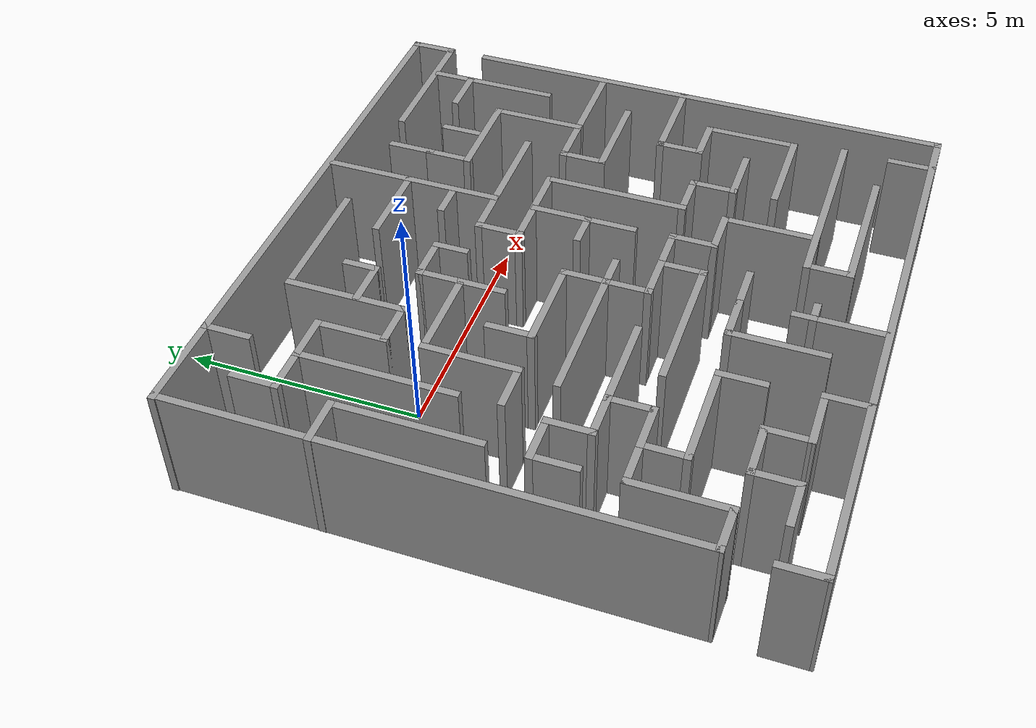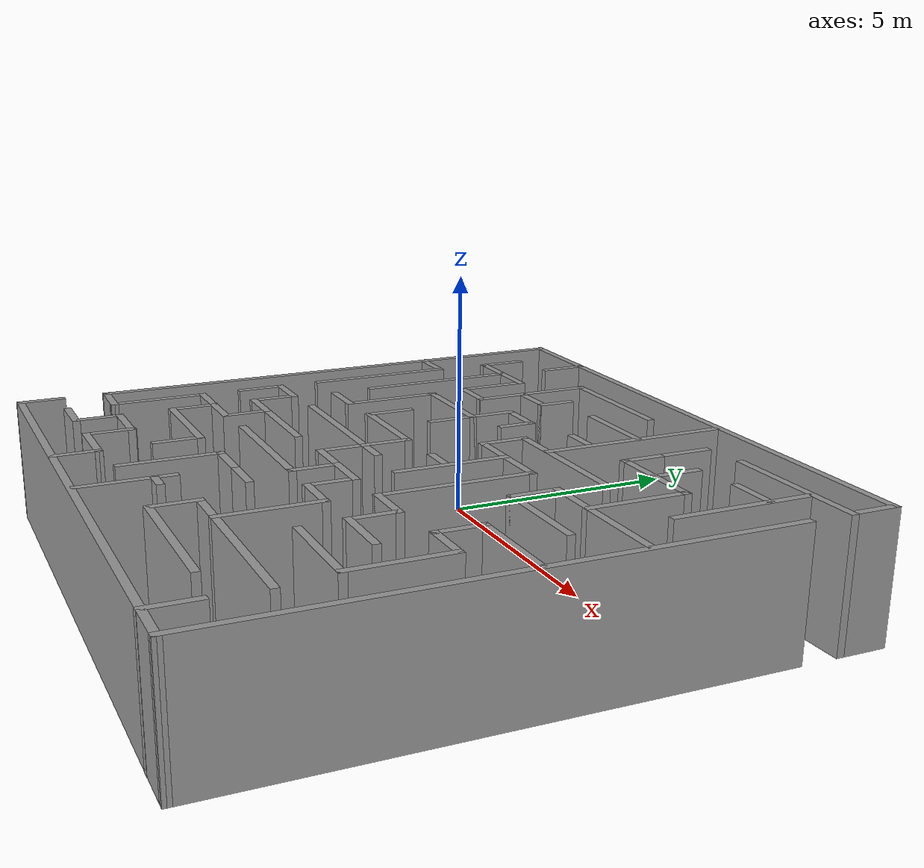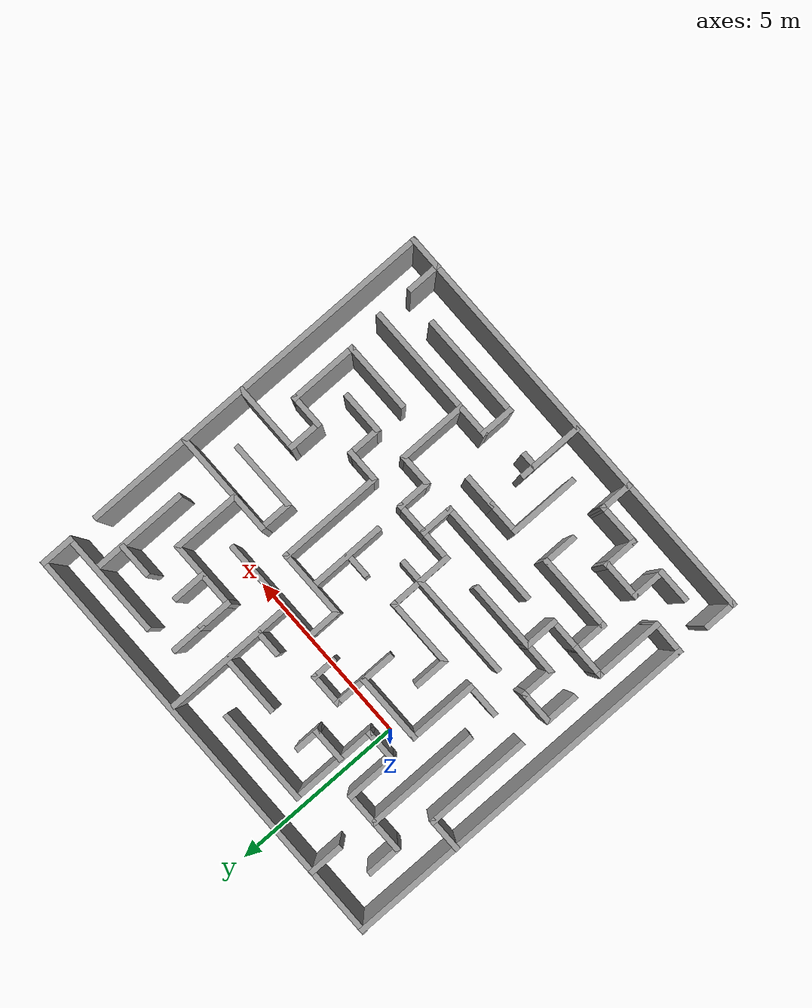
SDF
<sdf version="1.7">
 <model name="maze_2">
  <pose>2.824 -2.42312 0 0 -0 0</pose>
  <link name="Wall_0">
   <collision name="Wall_0_Collision">
    <geometry><box><size>12.0001 0.15 2.5</size></box></geometry>
    <pose>0 0 1.25 0 -0 0</pose>
   </collision>
   <visual name="Wall_0_Visual">
    <pose>0 0 1.25 0 -0 0</pose>
    <geometry><box><size>12.0001 0.15 2.5</size></box></geometry>
    <material>
     <script><uri>file://media/materials/scripts/gazebo.material</uri><name>Gazebo/Grey</name></script>
     <ambient>1 1 1 1</ambient>
    </material>
    <meta><layer>0</layer></meta>
   </visual>
   <pose>-0.00995 6.00703 0 0 -0 -0.00385</pose>
  </link>
  <link name="Wall_101">
   <collision name="Wall_101_Collision">
    <geometry><box><size>2 0.15 2.5</size></box></geometry>
    <pose>0 0 1.25 0 -0 0</pose>
   </collision>
   <visual name="Wall_101_Visual">
    <pose>0 0 1.25 0 -0 0</pose>
    <geometry><box><size>2 0.15 2.5</size></box></geometry>
    <material>
     <script><uri>file://media/materials/scripts/gazebo.material</uri><name>Gazebo/Grey</name></script>
     <ambient>1 1 1 1</ambient>
    </material>
    <meta><layer>0</layer></meta>
   </visual>
   <pose>-3.22514 1.07823 0 0 -0 1.5708</pose>
  </link>
  <link name="Wall_102">
   <collision name="Wall_102_Collision">
    <geometry><box><size>2 0.15 2.5</size></box></geometry>
    <pose>0 0 1.25 0 -0 0</pose>
   </collision>
   <visual name="Wall_102_Visual">
    <pose>0 0 1.25 0 -0 0</pose>
    <geometry><box><size>2 0.15 2.5</size></box></geometry>
    <material>
     <script><uri>file://media/materials/scripts/gazebo.material</uri><name>Gazebo/Grey</name></script>
     <ambient>1 1 1 1</ambient>
    </material>
    <meta><layer>0</layer></meta>
   </visual>
   <pose>-2.30014 2.00323 0 0 -0 0</pose>
  </link>
  <link name="Wall_103">
   <collision name="Wall_103_Collision">
    <geometry><box><size>1 0.15 2.5</size></box></geometry>
    <pose>0 0 1.25 0 -0 0</pose>
   </collision>
   <visual name="Wall_103_Visual">
    <pose>0 0 1.25 0 -0 0</pose>
    <geometry><box><size>1 0.15 2.5</size></box></geometry>
    <material>
     <script><uri>file://media/materials/scripts/gazebo.material</uri><name>Gazebo/Grey</name></script>
     <ambient>1 1 1 1</ambient>
    </material>
    <meta><layer>0</layer></meta>
   </visual>
   <pose>-1.37514 1.57823 0 0 -0 -1.5708</pose>
  </link>
  <link name="Wall_105">
   <collision name="Wall_105_Collision">
    <geometry><box><size>1 0.15 2.5</size></box></geometry>
    <pose>0 0 1.25 0 -0 0</pose>
   </collision>
   <visual name="Wall_105_Visual">
    <pose>0 0 1.25 0 -0 0</pose>
    <geometry><box><size>1 0.15 2.5</size></box></geometry>
    <material>
     <script><uri>file://media/materials/scripts/gazebo.material</uri><name>Gazebo/Grey</name></script>
     <ambient>1 1 1 1</ambient>
    </material>
    <meta><layer>0</layer></meta>
   </visual>
   <pose>-1.37514 2.42823 0 0 -0 1.5708</pose>
  </link>
  <link name="Wall_106">
   <collision name="Wall_106_Collision">
    <geometry><box><size>1 0.15 2.5</size></box></geometry>
    <pose>0 0 1.25 0 -0 0</pose>
   </collision>
   <visual name="Wall_106_Visual">
    <pose>0 0 1.25 0 -0 0</pose>
    <geometry><box><size>1 0.15 2.5</size></box></geometry>
    <material>
     <script><uri>file://media/materials/scripts/gazebo.material</uri><name>Gazebo/Grey</name></script>
     <ambient>1 1 1 1</ambient>
    </material>
    <meta><layer>0</layer></meta>
   </visual>
   <pose>-0.950141 2.85323 0 0 -0 0</pose>
  </link>
  <link name="Wall_109">
   <collision name="Wall_109_Collision">
    <geometry><box><size>1.25 0.15 2.5</size></box></geometry>
    <pose>0 0 1.25 0 -0 0</pose>
   </collision>
   <visual name="Wall_109_Visual">
    <pose>0 0 1.25 0 -0 0</pose>
    <geometry><box><size>1.25 0.15 2.5</size></box></geometry>
    <material>
     <script><uri>file://media/materials/scripts/gazebo.material</uri><name>Gazebo/Grey</name></script>
     <ambient>1 1 1 1</ambient>
    </material>
    <meta><layer>0</layer></meta>
   </visual>
   <pose>3.55854 -2.2765 0 0 -0 3.14159</pose>
  </link>
  <link name="Wall_110">
   <collision name="Wall_110_Collision">
    <geometry><box><size>1 0.15 2.5</size></box></geometry>
    <pose>0 0 1.25 0 -0 0</pose>
   </collision>
   <visual name="Wall_110_Visual">
    <pose>0 0 1.25 0 -0 0</pose>
    <geometry><box><size>1 0.15 2.5</size></box></geometry>
    <material>
     <script><uri>file://media/materials/scripts/gazebo.material</uri><name>Gazebo/Grey</name></script>
     <ambient>1 1 1 1</ambient>
    </material>
    <meta><layer>0</layer></meta>
   </visual>
   <pose>3.00854 -1.8515 0 0 -0 1.5708</pose>
  </link>
  <link name="Wall_111">
   <collision name="Wall_111_Collision">
    <geometry><box><size>1 0.15 2.5</size></box></geometry>
    <pose>0 0 1.25 0 -0 0</pose>
   </collision>
   <visual name="Wall_111_Visual">
    <pose>0 0 1.25 0 -0 0</pose>
    <geometry><box><size>1 0.15 2.5</size></box></geometry>
    <material>
     <script><uri>file://media/materials/scripts/gazebo.material</uri><name>Gazebo/Grey</name></script>
     <ambient>1 1 1 1</ambient>
    </material>
    <meta><layer>0</layer></meta>
   </visual>
   <pose>2.58354 -1.4265 0 0 -0 3.14159</pose>
  </link>
  <link name="Wall_112">
   <collision name="Wall_112_Collision">
    <geometry><box><size>3 0.15 2.5</size></box></geometry>
    <pose>0 0 1.25 0 -0 0</pose>
   </collision>
   <visual name="Wall_112_Visual">
    <pose>0 0 1.25 0 -0 0</pose>
    <geometry><box><size>3 0.15 2.5</size></box></geometry>
    <material>
     <script><uri>file://media/materials/scripts/gazebo.material</uri><name>Gazebo/Grey</name></script>
     <ambient>1 1 1 1</ambient>
    </material>
    <meta><layer>0</layer></meta>
   </visual>
   <pose>2.15854 -0.001499 0 0 -0 1.5708</pose>
  </link>
  <link name="Wall_113">
   <collision name="Wall_113_Collision">
    <geometry><box><size>2 0.15 2.5</size></box></geometry>
    <pose>0 0 1.25 0 -0 0</pose>
   </collision>
   <visual name="Wall_113_Visual">
    <pose>0 0 1.25 0 -0 0</pose>
    <geometry><box><size>2 0.15 2.5</size></box></geometry>
    <material>
     <script><uri>file://media/materials/scripts/gazebo.material</uri><name>Gazebo/Grey</name></script>
     <ambient>1 1 1 1</ambient>
    </material>
    <meta><layer>0</layer></meta>
   </visual>
   <pose>1.23354 1.4235 0 0 -0 3.14159</pose>
  </link>
  <link name="Wall_114">
   <collision name="Wall_114_Collision">
    <geometry><box><size>1 0.15 2.5</size></box></geometry>
    <pose>0 0 1.25 0 -0 0</pose>
   </collision>
   <visual name="Wall_114_Visual">
    <pose>0 0 1.25 0 -0 0</pose>
    <geometry><box><size>1 0.15 2.5</size></box></geometry>
    <material>
     <script><uri>file://media/materials/scripts/gazebo.material</uri><name>Gazebo/Grey</name></script>
     <ambient>1 1 1 1</ambient>
    </material>
    <meta><layer>0</layer></meta>
   </visual>
   <pose>0.308542 1.8485 0 0 -0 1.5708</pose>
  </link>
  <link name="Wall_115">
   <collision name="Wall_115_Collision">
    <geometry><box><size>3 0.15 2.5</size></box></geometry>
    <pose>0 0 1.25 0 -0 0</pose>
   </collision>
   <visual name="Wall_115_Visual">
    <pose>0 0 1.25 0 -0 0</pose>
    <geometry><box><size>3 0.15 2.5</size></box></geometry>
    <material>
     <script><uri>file://media/materials/scripts/gazebo.material</uri><name>Gazebo/Grey</name></script>
     <ambient>1 1 1 1</ambient>
    </material>
    <meta><layer>0</layer></meta>
   </visual>
   <pose>1.73354 2.2735 0 0 -0 0</pose>
  </link>
  <link name="Wall_117">
   <collision name="Wall_117_Collision">
    <geometry><box><size>2.25 0.15 2.5</size></box></geometry>
    <pose>0 0 1.25 0 -0 0</pose>
   </collision>
   <visual name="Wall_117_Visual">
    <pose>0 0 1.25 0 -0 0</pose>
    <geometry><box><size>2.25 0.15 2.5</size></box></geometry>
    <material>
     <script><uri>file://media/materials/scripts/gazebo.material</uri><name>Gazebo/Grey</name></script>
     <ambient>1 1 1 1</ambient>
    </material>
    <meta><layer>0</layer></meta>
   </visual>
   <pose>1.17196 0.374398 0 0 -0 -1.5708</pose>
  </link>
  <link name="Wall_119">
   <collision name="Wall_119_Collision">
    <geometry><box><size>0.75 0.15 2.5</size></box></geometry>
    <pose>0 0 1.25 0 -0 0</pose>
   </collision>
   <visual name="Wall_119_Visual">
    <pose>0 0 1.25 0 -0 0</pose>
    <geometry><box><size>0.75 0.15 2.5</size></box></geometry>
    <material>
     <script><uri>file://media/materials/scripts/gazebo.material</uri><name>Gazebo/Grey</name></script>
     <ambient>1 1 1 1</ambient>
    </material>
    <meta><layer>0</layer></meta>
   </visual>
   <pose>0.851848 0.277924 0 0 -0 3.14159</pose>
  </link>
  <link name="Wall_12">
   <collision name="Wall_12_Collision">
    <geometry><box><size>0.969582 0.15 2.5</size></box></geometry>
    <pose>0 0 1.25 0 -0 0</pose>
   </collision>
   <visual name="Wall_12_Visual">
    <pose>0 0 1.25 0 -0 0</pose>
    <geometry><box><size>0.969582 0.15 2.5</size></box></geometry>
    <material>
     <script><uri>file://media/materials/scripts/gazebo.material</uri><name>Gazebo/Grey</name></script>
     <ambient>1 1 1 1</ambient>
    </material>
    <meta><layer>0</layer></meta>
   </visual>
   <pose>-2.07514 -5.58698 0 0 -0 1.5708</pose>
  </link>
  <link name="Wall_122">
   <collision name="Wall_122_Collision">
    <geometry><box><size>0.75 0.15 2.5</size></box></geometry>
    <pose>0 0 1.25 0 -0 0</pose>
   </collision>
   <visual name="Wall_122_Visual">
    <pose>0 0 1.25 0 -0 0</pose>
    <geometry><box><size>0.75 0.15 2.5</size></box></geometry>
    <material>
     <script><uri>file://media/materials/scripts/gazebo.material</uri><name>Gazebo/Grey</name></script>
     <ambient>1 1 1 1</ambient>
    </material>
    <meta><layer>0</layer></meta>
   </visual>
   <pose>-0.175141 -0.627186 0 0 -0 0</pose>
  </link>
  <link name="Wall_124">
   <collision name="Wall_124_Collision">
    <geometry><box><size>0.75 0.15 2.5</size></box></geometry>
    <pose>0 0 1.25 0 -0 0</pose>
   </collision>
   <visual name="Wall_124_Visual">
    <pose>0 0 1.25 0 -0 0</pose>
    <geometry><box><size>0.75 0.15 2.5</size></box></geometry>
    <material>
     <script><uri>file://media/materials/scripts/gazebo.material</uri><name>Gazebo/Grey</name></script>
     <ambient>1 1 1 1</ambient>
    </material>
    <meta><layer>0</layer></meta>
   </visual>
   <pose>-0.525141 2.55323 0 0 -0 -1.5708</pose>
  </link>
  <link name="Wall_126">
   <collision name="Wall_126_Collision">
    <geometry><box><size>3.75 0.15 2.5</size></box></geometry>
    <pose>0 0 1.25 0 -0 0</pose>
   </collision>
   <visual name="Wall_126_Visual">
    <pose>0 0 1.25 0 -0 0</pose>
    <geometry><box><size>3.75 0.15 2.5</size></box></geometry>
    <material>
     <script><uri>file://media/materials/scripts/gazebo.material</uri><name>Gazebo/Grey</name></script>
     <ambient>1 1 1 1</ambient>
    </material>
    <meta><layer>0</layer></meta>
   </visual>
   <pose>1.21219 4.08928 0 0 -0 1.5708</pose>
  </link>
  <link name="Wall_13">
   <collision name="Wall_13_Collision">
    <geometry><box><size>1.25857 0.15 2.5</size></box></geometry>
    <pose>0 0 1.25 0 -0 0</pose>
   </collision>
   <visual name="Wall_13_Visual">
    <pose>0 0 1.25 0 -0 0</pose>
    <geometry><box><size>1.25857 0.15 2.5</size></box></geometry>
    <material>
     <script><uri>file://media/materials/scripts/gazebo.material</uri><name>Gazebo/Grey</name></script>
     <ambient>1 1 1 1</ambient>
    </material>
    <meta><layer>0</layer></meta>
   </visual>
   <pose>-2.62941 -5.18044 0 0 -0 -3.13572</pose>
  </link>
  <link name="Wall_130">
   <collision name="Wall_130_Collision">
    <geometry><box><size>3.25 0.15 2.5</size></box></geometry>
    <pose>0 0 1.25 0 -0 0</pose>
   </collision>
   <visual name="Wall_130_Visual">
    <pose>0 0 1.25 0 -0 0</pose>
    <geometry><box><size>3.25 0.15 2.5</size></box></geometry>
    <material>
     <script><uri>file://media/materials/scripts/gazebo.material</uri><name>Gazebo/Grey</name></script>
     <ambient>1 1 1 1</ambient>
    </material>
    <meta><layer>0</layer></meta>
   </visual>
   <pose>-4.14755 2.55409 0 0 -0 1.5708</pose>
  </link>
  <link name="Wall_131">
   <collision name="Wall_131_Collision">
    <geometry><box><size>1 0.15 2.5</size></box></geometry>
    <pose>0 0 1.25 0 -0 0</pose>
   </collision>
   <visual name="Wall_131_Visual">
    <pose>0 0 1.25 0 -0 0</pose>
    <geometry><box><size>1 0.15 2.5</size></box></geometry>
    <material>
     <script><uri>file://media/materials/scripts/gazebo.material</uri><name>Gazebo/Grey</name></script>
     <ambient>1 1 1 1</ambient>
    </material>
    <meta><layer>0</layer></meta>
   </visual>
   <pose>-4.57255 4.10409 0 0 -0 3.14159</pose>
  </link>
  <link name="Wall_132">
   <collision name="Wall_132_Collision">
    <geometry><box><size>1 0.15 2.5</size></box></geometry>
    <pose>0 0 1.25 0 -0 0</pose>
   </collision>
   <visual name="Wall_132_Visual">
    <pose>0 0 1.25 0 -0 0</pose>
    <geometry><box><size>1 0.15 2.5</size></box></geometry>
    <material>
     <script><uri>file://media/materials/scripts/gazebo.material</uri><name>Gazebo/Grey</name></script>
     <ambient>1 1 1 1</ambient>
    </material>
    <meta><layer>0</layer></meta>
   </visual>
   <pose>-4.99755 4.52909 0 0 -0 1.5708</pose>
  </link>
  <link name="Wall_134">
   <collision name="Wall_134_Collision">
    <geometry><box><size>1 0.15 2.5</size></box></geometry>
    <pose>0 0 1.25 0 -0 0</pose>
   </collision>
   <visual name="Wall_134_Visual">
    <pose>0 0 1.25 0 -0 0</pose>
    <geometry><box><size>1 0.15 2.5</size></box></geometry>
    <material>
     <script><uri>file://media/materials/scripts/gazebo.material</uri><name>Gazebo/Grey</name></script>
     <ambient>1 1 1 1</ambient>
    </material>
    <meta><layer>0</layer></meta>
   </visual>
   <pose>-3.72255 4.10409 0 0 -0 0</pose>
  </link>
  <link name="Wall_135">
   <collision name="Wall_135_Collision">
    <geometry><box><size>1.5 0.15 2.5</size></box></geometry>
    <pose>0 0 1.25 0 -0 0</pose>
   </collision>
   <visual name="Wall_135_Visual">
    <pose>0 0 1.25 0 -0 0</pose>
    <geometry><box><size>1.5 0.15 2.5</size></box></geometry>
    <material>
     <script><uri>file://media/materials/scripts/gazebo.material</uri><name>Gazebo/Grey</name></script>
     <ambient>1 1 1 1</ambient>
    </material>
    <meta><layer>0</layer></meta>
   </visual>
   <pose>-3.29755 3.42909 0 0 -0 -1.5708</pose>
  </link>
  <link name="Wall_139">
   <collision name="Wall_139_Collision">
    <geometry><box><size>1 0.15 2.5</size></box></geometry>
    <pose>0 0 1.25 0 -0 0</pose>
   </collision>
   <visual name="Wall_139_Visual">
    <pose>0 0 1.25 0 -0 0</pose>
    <geometry><box><size>1 0.15 2.5</size></box></geometry>
    <material>
     <script><uri>file://media/materials/scripts/gazebo.material</uri><name>Gazebo/Grey</name></script>
     <ambient>1 1 1 1</ambient>
    </material>
    <meta><layer>0</layer></meta>
   </visual>
   <pose>-2.87255 2.75409 0 0 -0 0</pose>
  </link>
  <link name="Wall_14">
   <collision name="Wall_14_Collision">
    <geometry><box><size>1 0.15 2.5</size></box></geometry>
    <pose>0 0 1.25 0 -0 0</pose>
   </collision>
   <visual name="Wall_14_Visual">
    <pose>0 0 1.25 0 -0 0</pose>
    <geometry><box><size>1 0.15 2.5</size></box></geometry>
    <material>
     <script><uri>file://media/materials/scripts/gazebo.material</uri><name>Gazebo/Grey</name></script>
     <ambient>1 1 1 1</ambient>
    </material>
    <meta><layer>0</layer></meta>
   </visual>
   <pose>-3.18369 -4.74349 0 0 -0 1.5708</pose>
  </link>
  <link name="Wall_140">
   <collision name="Wall_140_Collision">
    <geometry><box><size>2.5 0.15 2.5</size></box></geometry>
    <pose>0 0 1.25 0 -0 0</pose>
   </collision>
   <visual name="Wall_140_Visual">
    <pose>0 0 1.25 0 -0 0</pose>
    <geometry><box><size>2.5 0.15 2.5</size></box></geometry>
    <material>
     <script><uri>file://media/materials/scripts/gazebo.material</uri><name>Gazebo/Grey</name></script>
     <ambient>1 1 1 1</ambient>
    </material>
    <meta><layer>0</layer></meta>
   </visual>
   <pose>-2.44755 3.92909 0 0 -0 1.5708</pose>
  </link>
  <link name="Wall_141">
   <collision name="Wall_141_Collision">
    <geometry><box><size>2.75 0.15 2.5</size></box></geometry>
    <pose>0 0 1.25 0 -0 0</pose>
   </collision>
   <visual name="Wall_141_Visual">
    <pose>0 0 1.25 0 -0 0</pose>
    <geometry><box><size>2.75 0.15 2.5</size></box></geometry>
    <material>
     <script><uri>file://media/materials/scripts/gazebo.material</uri><name>Gazebo/Grey</name></script>
     <ambient>1 1 1 1</ambient>
    </material>
    <meta><layer>0</layer></meta>
   </visual>
   <pose>-1.14755 5.10409 0 0 -0 0</pose>
  </link>
  <link name="Wall_144">
   <collision name="Wall_144_Collision">
    <geometry><box><size>1 0.15 2.5</size></box></geometry>
    <pose>0 0 1.25 0 -0 0</pose>
   </collision>
   <visual name="Wall_144_Visual">
    <pose>0 0 1.25 0 -0 0</pose>
    <geometry><box><size>1 0.15 2.5</size></box></geometry>
    <material>
     <script><uri>file://media/materials/scripts/gazebo.material</uri><name>Gazebo/Grey</name></script>
     <ambient>1 1 1 1</ambient>
    </material>
    <meta><layer>0</layer></meta>
   </visual>
   <pose>-1.99278 3.69931 0 0 -0 0</pose>
  </link>
  <link name="Wall_145">
   <collision name="Wall_145_Collision">
    <geometry><box><size>0.75 0.15 2.5</size></box></geometry>
    <pose>0 0 1.25 0 -0 0</pose>
   </collision>
   <visual name="Wall_145_Visual">
    <pose>0 0 1.25 0 -0 0</pose>
    <geometry><box><size>0.75 0.15 2.5</size></box></geometry>
    <material>
     <script><uri>file://media/materials/scripts/gazebo.material</uri><name>Gazebo/Grey</name></script>
     <ambient>1 1 1 1</ambient>
    </material>
    <meta><layer>0</layer></meta>
   </visual>
   <pose>-1.56778 3.99931 0 0 -0 1.5708</pose>
  </link>
  <link name="Wall_149">
   <collision name="Wall_149_Collision">
    <geometry><box><size>1.75 0.15 2.5</size></box></geometry>
    <pose>0 0 1.25 0 -0 0</pose>
   </collision>
   <visual name="Wall_149_Visual">
    <pose>0 0 1.25 0 -0 0</pose>
    <geometry><box><size>1.75 0.15 2.5</size></box></geometry>
    <material>
     <script><uri>file://media/materials/scripts/gazebo.material</uri><name>Gazebo/Grey</name></script>
     <ambient>1 1 1 1</ambient>
    </material>
    <meta><layer>0</layer></meta>
   </visual>
   <pose>0.382545 4.18203 0 0 -0 3.14159</pose>
  </link>
  <link name="Wall_151">
   <collision name="Wall_151_Collision">
    <geometry><box><size>0.75 0.15 2.5</size></box></geometry>
    <pose>0 0 1.25 0 -0 0</pose>
   </collision>
   <visual name="Wall_151_Visual">
    <pose>0 0 1.25 0 -0 0</pose>
    <geometry><box><size>0.75 0.15 2.5</size></box></geometry>
    <material>
     <script><uri>file://media/materials/scripts/gazebo.material</uri><name>Gazebo/Grey</name></script>
     <ambient>1 1 1 1</ambient>
    </material>
    <meta><layer>0</layer></meta>
   </visual>
   <pose>0.842318 3.17636 0 0 -0 3.14159</pose>
  </link>
  <link name="Wall_153">
   <collision name="Wall_153_Collision">
    <geometry><box><size>1 0.15 2.5</size></box></geometry>
    <pose>0 0 1.25 0 -0 0</pose>
   </collision>
   <visual name="Wall_153_Visual">
    <pose>0 0 1.25 0 -0 0</pose>
    <geometry><box><size>1 0.15 2.5</size></box></geometry>
    <material>
     <script><uri>file://media/materials/scripts/gazebo.material</uri><name>Gazebo/Grey</name></script>
     <ambient>1 1 1 1</ambient>
    </material>
    <meta><layer>0</layer></meta>
   </visual>
   <pose>-4.04698 5.58737 0 0 -0 -1.5708</pose>
  </link>
  <link name="Wall_155">
   <collision name="Wall_155_Collision">
    <geometry><box><size>1 0.15 2.5</size></box></geometry>
    <pose>0 0 1.25 0 -0 0</pose>
   </collision>
   <visual name="Wall_155_Visual">
    <pose>0 0 1.25 0 -0 0</pose>
    <geometry><box><size>1 0.15 2.5</size></box></geometry>
    <material>
     <script><uri>file://media/materials/scripts/gazebo.material</uri><name>Gazebo/Grey</name></script>
     <ambient>1 1 1 1</ambient>
    </material>
    <meta><layer>0</layer></meta>
   </visual>
   <pose>5.93516 5.55922 0 0 -0 -1.5708</pose>
  </link>
  <link name="Wall_156">
   <collision name="Wall_156_Collision">
    <geometry><box><size>3 0.15 2.5</size></box></geometry>
    <pose>0 0 1.25 0 -0 0</pose>
   </collision>
   <visual name="Wall_156_Visual">
    <pose>0 0 1.25 0 -0 0</pose>
    <geometry><box><size>3 0.15 2.5</size></box></geometry>
    <material>
     <script><uri>file://media/materials/scripts/gazebo.material</uri><name>Gazebo/Grey</name></script>
     <ambient>1 1 1 1</ambient>
    </material>
    <meta><layer>0</layer></meta>
   </visual>
   <pose>4.51016 5.13422 0 0 -0 3.14159</pose>
  </link>
  <link name="Wall_162">
   <collision name="Wall_162_Collision">
    <geometry><box><size>2.75 0.15 2.5</size></box></geometry>
    <pose>0 0 1.25 0 -0 0</pose>
   </collision>
   <visual name="Wall_162_Visual">
    <pose>0 0 1.25 0 -0 0</pose>
    <geometry><box><size>2.75 0.15 2.5</size></box></geometry>
    <material>
     <script><uri>file://media/materials/scripts/gazebo.material</uri><name>Gazebo/Grey</name></script>
     <ambient>1 1 1 1</ambient>
    </material>
    <meta><layer>0</layer></meta>
   </visual>
   <pose>4.98401 3.75227 0 0 -0 1.5708</pose>
  </link>
  <link name="Wall_165">
   <collision name="Wall_165_Collision">
    <geometry><box><size>1 0.15 2.5</size></box></geometry>
    <pose>0 0 1.25 0 -0 0</pose>
   </collision>
   <visual name="Wall_165_Visual">
    <pose>0 0 1.25 0 -0 0</pose>
    <geometry><box><size>1 0.15 2.5</size></box></geometry>
    <material>
     <script><uri>file://media/materials/scripts/gazebo.material</uri><name>Gazebo/Grey</name></script>
     <ambient>1 1 1 1</ambient>
    </material>
    <meta><layer>0</layer></meta>
   </visual>
   <pose>2.22486 4.54781 0 0 -0 1.5708</pose>
  </link>
  <link name="Wall_167">
   <collision name="Wall_167_Collision">
    <geometry><box><size>1 0.15 2.5</size></box></geometry>
    <pose>0 0 1.25 0 -0 0</pose>
   </collision>
   <visual name="Wall_167_Visual">
    <pose>0 0 1.25 0 -0 0</pose>
    <geometry><box><size>1 0.15 2.5</size></box></geometry>
    <material>
     <script><uri>file://media/materials/scripts/gazebo.material</uri><name>Gazebo/Grey</name></script>
     <ambient>1 1 1 1</ambient>
    </material>
    <meta><layer>0</layer></meta>
   </visual>
   <pose>3.15367 3.70192 0 0 -0 1.5708</pose>
  </link>
  <link name="Wall_169">
   <collision name="Wall_169_Collision">
    <geometry><box><size>1 0.15 2.5</size></box></geometry>
    <pose>0 0 1.25 0 -0 0</pose>
   </collision>
   <visual name="Wall_169_Visual">
    <pose>0 0 1.25 0 -0 0</pose>
    <geometry><box><size>1 0.15 2.5</size></box></geometry>
    <material>
     <script><uri>file://media/materials/scripts/gazebo.material</uri><name>Gazebo/Grey</name></script>
     <ambient>1 1 1 1</ambient>
    </material>
    <meta><layer>0</layer></meta>
   </visual>
   <pose>4.51878 4.2826 0 0 -0 3.14159</pose>
  </link>
  <link name="Wall_173">
   <collision name="Wall_173_Collision">
    <geometry><box><size>10.4614 0.15 2.5</size></box></geometry>
    <pose>0 0 1.25 0 -0 0</pose>
   </collision>
   <visual name="Wall_173_Visual">
    <pose>0 0 1.25 0 -0 0</pose>
    <geometry><box><size>10.4614 0.15 2.5</size></box></geometry>
    <material>
     <script><uri>file://media/materials/scripts/gazebo.material</uri><name>Gazebo/Grey</name></script>
     <ambient>1 1 1 1</ambient>
    </material>
    <meta><layer>0</layer></meta>
   </visual>
   <pose>5.93001 -0.871484 0 0 -0 -1.5718</pose>
  </link>
  <link name="Wall_176">
   <collision name="Wall_176_Collision">
    <geometry><box><size>0.5 0.15 2.5</size></box></geometry>
    <pose>0 0 1.25 0 -0 0</pose>
   </collision>
   <visual name="Wall_176_Visual">
    <pose>0 0 1.25 0 -0 0</pose>
    <geometry><box><size>0.5 0.15 2.5</size></box></geometry>
    <material>
     <script><uri>file://media/materials/scripts/gazebo.material</uri><name>Gazebo/Grey</name></script>
     <ambient>1 1 1 1</ambient>
    </material>
    <meta><layer>0</layer></meta>
   </visual>
   <pose>-0.190734 -4.41486 0 0 -0 1.5708</pose>
  </link>
  <link name="Wall_178">
   <collision name="Wall_178_Collision">
    <geometry><box><size>1.5 0.15 2.5</size></box></geometry>
    <pose>0 0 1.25 0 -0 0</pose>
   </collision>
   <visual name="Wall_178_Visual">
    <pose>0 0 1.25 0 -0 0</pose>
    <geometry><box><size>1.5 0.15 2.5</size></box></geometry>
    <material>
     <script><uri>file://media/materials/scripts/gazebo.material</uri><name>Gazebo/Grey</name></script>
     <ambient>1 1 1 1</ambient>
    </material>
    <meta><layer>0</layer></meta>
   </visual>
   <pose>-0.190734 -5.26486 0 0 -0 -1.5708</pose>
  </link>
  <link name="Wall_180">
   <collision name="Wall_180_Collision">
    <geometry><box><size>1 0.15 2.5</size></box></geometry>
    <pose>0 0 1.25 0 -0 0</pose>
   </collision>
   <visual name="Wall_180_Visual">
    <pose>0 0 1.25 0 -0 0</pose>
    <geometry><box><size>1 0.15 2.5</size></box></geometry>
    <material>
     <script><uri>file://media/materials/scripts/gazebo.material</uri><name>Gazebo/Grey</name></script>
     <ambient>1 1 1 1</ambient>
    </material>
    <meta><layer>0</layer></meta>
   </visual>
   <pose>5.06727 -5.60513 0 0 -0 1.5708</pose>
  </link>
  <link name="Wall_182">
   <collision name="Wall_182_Collision">
    <geometry><box><size>1 0.15 2.5</size></box></geometry>
    <pose>0 0 1.25 0 -0 0</pose>
   </collision>
   <visual name="Wall_182_Visual">
    <pose>0 0 1.25 0 -0 0</pose>
    <geometry><box><size>1 0.15 2.5</size></box></geometry>
    <material>
     <script><uri>file://media/materials/scripts/gazebo.material</uri><name>Gazebo/Grey</name></script>
     <ambient>1 1 1 1</ambient>
    </material>
    <meta><layer>0</layer></meta>
   </visual>
   <pose>-3.65014 0.153232 0 0 -0 3.14159</pose>
  </link>
  <link name="Wall_2">
   <collision name="Wall_2_Collision">
    <geometry><box><size>12 0.15 2.5</size></box></geometry>
    <pose>0 0 1.25 0 -0 0</pose>
   </collision>
   <visual name="Wall_2_Visual">
    <pose>0 0 1.25 0 -0 0</pose>
    <geometry><box><size>12 0.15 2.5</size></box></geometry>
    <material>
     <script><uri>file://media/materials/scripts/gazebo.material</uri><name>Gazebo/Grey</name></script>
     <ambient>1 1 1 1</ambient>
    </material>
    <meta><layer>0</layer></meta>
   </visual>
   <pose>-0.000141 -6.01198 0 0 -0 3.13903</pose>
  </link>
  <link name="Wall_21">
   <collision name="Wall_21_Collision">
    <geometry><box><size>1.1673 0.15 2.5</size></box></geometry>
    <pose>0 0 1.25 0 -0 0</pose>
   </collision>
   <visual name="Wall_21_Visual">
    <pose>0 0 1.25 0 -0 0</pose>
    <geometry><box><size>1.1673 0.15 2.5</size></box></geometry>
    <material>
     <script><uri>file://media/materials/scripts/gazebo.material</uri><name>Gazebo/Grey</name></script>
     <ambient>1 1 1 1</ambient>
    </material>
    <meta><layer>0</layer></meta>
   </visual>
   <pose>-3.69234 -4.3337 0 0 -0 3.14159</pose>
  </link>
  <link name="Wall_22">
   <collision name="Wall_22_Collision">
    <geometry><box><size>1 0.15 2.5</size></box></geometry>
    <pose>0 0 1.25 0 -0 0</pose>
   </collision>
   <visual name="Wall_22_Visual">
    <pose>0 0 1.25 0 -0 0</pose>
    <geometry><box><size>1 0.15 2.5</size></box></geometry>
    <material>
     <script><uri>file://media/materials/scripts/gazebo.material</uri><name>Gazebo/Grey</name></script>
     <ambient>1 1 1 1</ambient>
    </material>
    <meta><layer>0</layer></meta>
   </visual>
   <pose>-4.20099 -4.77391 0 0 -0 -1.5708</pose>
  </link>
  <link name="Wall_25">
   <collision name="Wall_25_Collision">
    <geometry><box><size>1.00022 0.15 2.5</size></box></geometry>
    <pose>0 0 1.25 0 -0 0</pose>
   </collision>
   <visual name="Wall_25_Visual">
    <pose>0 0 1.25 0 -0 0</pose>
    <geometry><box><size>1.00022 0.15 2.5</size></box></geometry>
    <material>
     <script><uri>file://media/materials/scripts/gazebo.material</uri><name>Gazebo/Grey</name></script>
     <ambient>1 1 1 1</ambient>
    </material>
    <meta><layer>0</layer></meta>
   </visual>
   <pose>-5.50014 -4.25639 0 0 -0 -0.022628</pose>
  </link>
  <link name="Wall_26">
   <collision name="Wall_26_Collision">
    <geometry><box><size>2 0.15 2.5</size></box></geometry>
    <pose>0 0 1.25 0 -0 0</pose>
   </collision>
   <visual name="Wall_26_Visual">
    <pose>0 0 1.25 0 -0 0</pose>
    <geometry><box><size>2 0.15 2.5</size></box></geometry>
    <material>
     <script><uri>file://media/materials/scripts/gazebo.material</uri><name>Gazebo/Grey</name></script>
     <ambient>1 1 1 1</ambient>
    </material>
    <meta><layer>0</layer></meta>
   </visual>
   <pose>-5.07514 -3.34101 0 0 -0 1.5708</pose>
  </link>
  <link name="Wall_27">
   <collision name="Wall_27_Collision">
    <geometry><box><size>1 0.15 2.5</size></box></geometry>
    <pose>0 0 1.25 0 -0 0</pose>
   </collision>
   <visual name="Wall_27_Visual">
    <pose>0 0 1.25 0 -0 0</pose>
    <geometry><box><size>1 0.15 2.5</size></box></geometry>
    <material>
     <script><uri>file://media/materials/scripts/gazebo.material</uri><name>Gazebo/Grey</name></script>
     <ambient>1 1 1 1</ambient>
    </material>
    <meta><layer>0</layer></meta>
   </visual>
   <pose>-4.65014 -2.41601 0 0 -0 0</pose>
  </link>
  <link name="Wall_28">
   <collision name="Wall_28_Collision">
    <geometry><box><size>1 0.15 2.5</size></box></geometry>
    <pose>0 0 1.25 0 -0 0</pose>
   </collision>
   <visual name="Wall_28_Visual">
    <pose>0 0 1.25 0 -0 0</pose>
    <geometry><box><size>1 0.15 2.5</size></box></geometry>
    <material>
     <script><uri>file://media/materials/scripts/gazebo.material</uri><name>Gazebo/Grey</name></script>
     <ambient>1 1 1 1</ambient>
    </material>
    <meta><layer>0</layer></meta>
   </visual>
   <pose>-4.22514 -2.84101 0 0 -0 -1.5708</pose>
  </link>
  <link name="Wall_29">
   <collision name="Wall_29_Collision">
    <geometry><box><size>2.23143 0.15 2.5</size></box></geometry>
    <pose>0 0 1.25 0 -0 0</pose>
   </collision>
   <visual name="Wall_29_Visual">
    <pose>0 0 1.25 0 -0 0</pose>
    <geometry><box><size>2.23143 0.15 2.5</size></box></geometry>
    <material>
     <script><uri>file://media/materials/scripts/gazebo.material</uri><name>Gazebo/Grey</name></script>
     <ambient>1 1 1 1</ambient>
    </material>
    <meta><layer>0</layer></meta>
   </visual>
   <pose>-3.18449 -3.266 0 0 -0 0</pose>
  </link>
  <link name="Wall_30">
   <collision name="Wall_30_Collision">
    <geometry><box><size>1 0.15 2.5</size></box></geometry>
    <pose>0 0 1.25 0 -0 0</pose>
   </collision>
   <visual name="Wall_30_Visual">
    <pose>0 0 1.25 0 -0 0</pose>
    <geometry><box><size>1 0.15 2.5</size></box></geometry>
    <material>
     <script><uri>file://media/materials/scripts/gazebo.material</uri><name>Gazebo/Grey</name></script>
     <ambient>1 1 1 1</ambient>
    </material>
    <meta><layer>0</layer></meta>
   </visual>
   <pose>-2.14384 -3.69101 0 0 -0 -1.5708</pose>
  </link>
  <link name="Wall_33">
   <collision name="Wall_33_Collision">
    <geometry><box><size>1 0.15 2.5</size></box></geometry>
    <pose>0 0 1.25 0 -0 0</pose>
   </collision>
   <visual name="Wall_33_Visual">
    <pose>0 0 1.25 0 -0 0</pose>
    <geometry><box><size>1 0.15 2.5</size></box></geometry>
    <material>
     <script><uri>file://media/materials/scripts/gazebo.material</uri><name>Gazebo/Grey</name></script>
     <ambient>1 1 1 1</ambient>
    </material>
    <meta><layer>0</layer></meta>
   </visual>
   <pose>-4.62599 -5.19891 0 0 -0 3.14159</pose>
  </link>
  <link name="Wall_37">
   <collision name="Wall_37_Collision">
    <geometry><box><size>1 0.15 2.5</size></box></geometry>
    <pose>0 0 1.25 0 -0 0</pose>
   </collision>
   <visual name="Wall_37_Visual">
    <pose>0 0 1.25 0 -0 0</pose>
    <geometry><box><size>1 0.15 2.5</size></box></geometry>
    <material>
     <script><uri>file://media/materials/scripts/gazebo.material</uri><name>Gazebo/Grey</name></script>
     <ambient>1 1 1 1</ambient>
    </material>
    <meta><layer>0</layer></meta>
   </visual>
   <pose>-0.650141 -3.17719 0 0 -0 3.14159</pose>
  </link>
  <link name="Wall_38">
   <collision name="Wall_38_Collision">
    <geometry><box><size>2 0.15 2.5</size></box></geometry>
    <pose>0 0 1.25 0 -0 0</pose>
   </collision>
   <visual name="Wall_38_Visual">
    <pose>0 0 1.25 0 -0 0</pose>
    <geometry><box><size>2 0.15 2.5</size></box></geometry>
    <material>
     <script><uri>file://media/materials/scripts/gazebo.material</uri><name>Gazebo/Grey</name></script>
     <ambient>1 1 1 1</ambient>
    </material>
    <meta><layer>0</layer></meta>
   </visual>
   <pose>-1.07514 -4.10219 0 0 -0 -1.5708</pose>
  </link>
  <link name="Wall_40">
   <collision name="Wall_40_Collision">
    <geometry><box><size>1 0.15 2.5</size></box></geometry>
    <pose>0 0 1.25 0 -0 0</pose>
   </collision>
   <visual name="Wall_40_Visual">
    <pose>0 0 1.25 0 -0 0</pose>
    <geometry><box><size>1 0.15 2.5</size></box></geometry>
    <material>
     <script><uri>file://media/materials/scripts/gazebo.material</uri><name>Gazebo/Grey</name></script>
     <ambient>1 1 1 1</ambient>
    </material>
    <meta><layer>0</layer></meta>
   </visual>
   <pose>-3.80014 -2.41601 0 0 -0 0</pose>
  </link>
  <link name="Wall_41">
   <collision name="Wall_41_Collision">
    <geometry><box><size>1 0.15 2.5</size></box></geometry>
    <pose>0 0 1.25 0 -0 0</pose>
   </collision>
   <visual name="Wall_41_Visual">
    <pose>0 0 1.25 0 -0 0</pose>
    <geometry><box><size>1 0.15 2.5</size></box></geometry>
    <material>
     <script><uri>file://media/materials/scripts/gazebo.material</uri><name>Gazebo/Grey</name></script>
     <ambient>1 1 1 1</ambient>
    </material>
    <meta><layer>0</layer></meta>
   </visual>
   <pose>-3.37514 -1.991 0 0 -0 1.5708</pose>
  </link>
  <link name="Wall_42">
   <collision name="Wall_42_Collision">
    <geometry><box><size>2 0.15 2.5</size></box></geometry>
    <pose>0 0 1.25 0 -0 0</pose>
   </collision>
   <visual name="Wall_42_Visual">
    <pose>0 0 1.25 0 -0 0</pose>
    <geometry><box><size>2 0.15 2.5</size></box></geometry>
    <material>
     <script><uri>file://media/materials/scripts/gazebo.material</uri><name>Gazebo/Grey</name></script>
     <ambient>1 1 1 1</ambient>
    </material>
    <meta><layer>0</layer></meta>
   </visual>
   <pose>-2.45014 -1.56601 0 0 -0 0</pose>
  </link>
  <link name="Wall_44">
   <collision name="Wall_44_Collision">
    <geometry><box><size>1 0.15 2.5</size></box></geometry>
    <pose>0 0 1.25 0 -0 0</pose>
   </collision>
   <visual name="Wall_44_Visual">
    <pose>0 0 1.25 0 -0 0</pose>
    <geometry><box><size>1 0.15 2.5</size></box></geometry>
    <material>
     <script><uri>file://media/materials/scripts/gazebo.material</uri><name>Gazebo/Grey</name></script>
     <ambient>1 1 1 1</ambient>
    </material>
    <meta><layer>0</layer></meta>
   </visual>
   <pose>-3.80014 -1.56601 0 0 -0 3.14159</pose>
  </link>
  <link name="Wall_45">
   <collision name="Wall_45_Collision">
    <geometry><box><size>1 0.15 2.5</size></box></geometry>
    <pose>0 0 1.25 0 -0 0</pose>
   </collision>
   <visual name="Wall_45_Visual">
    <pose>0 0 1.25 0 -0 0</pose>
    <geometry><box><size>1 0.15 2.5</size></box></geometry>
    <material>
     <script><uri>file://media/materials/scripts/gazebo.material</uri><name>Gazebo/Grey</name></script>
     <ambient>1 1 1 1</ambient>
    </material>
    <meta><layer>0</layer></meta>
   </visual>
   <pose>-4.22514 -1.14101 0 0 -0 1.5708</pose>
  </link>
  <link name="Wall_46">
   <collision name="Wall_46_Collision">
    <geometry><box><size>1 0.15 2.5</size></box></geometry>
    <pose>0 0 1.25 0 -0 0</pose>
   </collision>
   <visual name="Wall_46_Visual">
    <pose>0 0 1.25 0 -0 0</pose>
    <geometry><box><size>1 0.15 2.5</size></box></geometry>
    <material>
     <script><uri>file://media/materials/scripts/gazebo.material</uri><name>Gazebo/Grey</name></script>
     <ambient>1 1 1 1</ambient>
    </material>
    <meta><layer>0</layer></meta>
   </visual>
   <pose>-4.65014 -0.716005 0 0 -0 3.14159</pose>
  </link>
  <link name="Wall_47">
   <collision name="Wall_47_Collision">
    <geometry><box><size>1 0.15 2.5</size></box></geometry>
    <pose>0 0 1.25 0 -0 0</pose>
   </collision>
   <visual name="Wall_47_Visual">
    <pose>0 0 1.25 0 -0 0</pose>
    <geometry><box><size>1 0.15 2.5</size></box></geometry>
    <material>
     <script><uri>file://media/materials/scripts/gazebo.material</uri><name>Gazebo/Grey</name></script>
     <ambient>1 1 1 1</ambient>
    </material>
    <meta><layer>0</layer></meta>
   </visual>
   <pose>-5.07514 -1.14101 0 0 -0 -1.5708</pose>
  </link>
  <link name="Wall_5">
   <collision name="Wall_5_Collision">
    <geometry><box><size>0.969582 0.15 2.5</size></box></geometry>
    <pose>0 0 1.25 0 -0 0</pose>
   </collision>
   <visual name="Wall_5_Visual">
    <pose>0 0 1.25 0 -0 0</pose>
    <geometry><box><size>0.969582 0.15 2.5</size></box></geometry>
    <material>
     <script><uri>file://media/materials/scripts/gazebo.material</uri><name>Gazebo/Grey</name></script>
     <ambient>1 1 1 1</ambient>
    </material>
    <meta><layer>0</layer></meta>
   </visual>
   <pose>-5.92514 -5.58698 0 0 -0 1.5708</pose>
  </link>
  <link name="Wall_51">
   <collision name="Wall_51_Collision">
    <geometry><box><size>4 0.15 2.5</size></box></geometry>
    <pose>0 0 1.25 0 -0 0</pose>
   </collision>
   <visual name="Wall_51_Visual">
    <pose>0 0 1.25 0 -0 0</pose>
    <geometry><box><size>4 0.15 2.5</size></box></geometry>
    <material>
     <script><uri>file://media/materials/scripts/gazebo.material</uri><name>Gazebo/Grey</name></script>
     <ambient>1 1 1 1</ambient>
    </material>
    <meta><layer>0</layer></meta>
   </visual>
   <pose>3.14986 -4.17719 0 0 -0 3.14159</pose>
  </link>
  <link name="Wall_52">
   <collision name="Wall_52_Collision">
    <geometry><box><size>1 0.15 2.5</size></box></geometry>
    <pose>0 0 1.25 0 -0 0</pose>
   </collision>
   <visual name="Wall_52_Visual">
    <pose>0 0 1.25 0 -0 0</pose>
    <geometry><box><size>1 0.15 2.5</size></box></geometry>
    <material>
     <script><uri>file://media/materials/scripts/gazebo.material</uri><name>Gazebo/Grey</name></script>
     <ambient>1 1 1 1</ambient>
    </material>
    <meta><layer>0</layer></meta>
   </visual>
   <pose>1.22486 -4.60219 0 0 -0 -1.5708</pose>
  </link>
  <link name="Wall_53">
   <collision name="Wall_53_Collision">
    <geometry><box><size>3 0.15 2.5</size></box></geometry>
    <pose>0 0 1.25 0 -0 0</pose>
   </collision>
   <visual name="Wall_53_Visual">
    <pose>0 0 1.25 0 -0 0</pose>
    <geometry><box><size>3 0.15 2.5</size></box></geometry>
    <material>
     <script><uri>file://media/materials/scripts/gazebo.material</uri><name>Gazebo/Grey</name></script>
     <ambient>1 1 1 1</ambient>
    </material>
    <meta><layer>0</layer></meta>
   </visual>
   <pose>2.64986 -5.02719 0 0 -0 0</pose>
  </link>
  <link name="Wall_55">
   <collision name="Wall_55_Collision">
    <geometry><box><size>1 0.15 2.5</size></box></geometry>
    <pose>0 0 1.25 0 -0 0</pose>
   </collision>
   <visual name="Wall_55_Visual">
    <pose>0 0 1.25 0 -0 0</pose>
    <geometry><box><size>1 0.15 2.5</size></box></geometry>
    <material>
     <script><uri>file://media/materials/scripts/gazebo.material</uri><name>Gazebo/Grey</name></script>
     <ambient>1 1 1 1</ambient>
    </material>
    <meta><layer>0</layer></meta>
   </visual>
   <pose>0.199859 -3.17719 0 0 -0 0</pose>
  </link>
  <link name="Wall_57">
   <collision name="Wall_57_Collision">
    <geometry><box><size>0.5 0.15 2.5</size></box></geometry>
    <pose>0 0 1.25 0 -0 0</pose>
   </collision>
   <visual name="Wall_57_Visual">
    <pose>0 0 1.25 0 -0 0</pose>
    <geometry><box><size>0.5 0.15 2.5</size></box></geometry>
    <material>
     <script><uri>file://media/materials/scripts/gazebo.material</uri><name>Gazebo/Grey</name></script>
     <ambient>1 1 1 1</ambient>
    </material>
    <meta><layer>0</layer></meta>
   </visual>
   <pose>-0.015734 -4.58986 0 0 -0 0</pose>
  </link>
  <link name="Wall_60">
   <collision name="Wall_60_Collision">
    <geometry><box><size>2 0.15 2.5</size></box></geometry>
    <pose>0 0 1.25 0 -0 0</pose>
   </collision>
   <visual name="Wall_60_Visual">
    <pose>0 0 1.25 0 -0 0</pose>
    <geometry><box><size>2 0.15 2.5</size></box></geometry>
    <material>
     <script><uri>file://media/materials/scripts/gazebo.material</uri><name>Gazebo/Grey</name></script>
     <ambient>1 1 1 1</ambient>
    </material>
    <meta><layer>0</layer></meta>
   </visual>
   <pose>2.07486 -3.25219 0 0 -0 1.5708</pose>
  </link>
  <link name="Wall_61">
   <collision name="Wall_61_Collision">
    <geometry><box><size>1 0.15 2.5</size></box></geometry>
    <pose>0 0 1.25 0 -0 0</pose>
   </collision>
   <visual name="Wall_61_Visual">
    <pose>0 0 1.25 0 -0 0</pose>
    <geometry><box><size>1 0.15 2.5</size></box></geometry>
    <material>
     <script><uri>file://media/materials/scripts/gazebo.material</uri><name>Gazebo/Grey</name></script>
     <ambient>1 1 1 1</ambient>
    </material>
    <meta><layer>0</layer></meta>
   </visual>
   <pose>1.64986 -2.32719 0 0 -0 3.14159</pose>
  </link>
  <link name="Wall_62">
   <collision name="Wall_62_Collision">
    <geometry><box><size>1 0.15 2.5</size></box></geometry>
    <pose>0 0 1.25 0 -0 0</pose>
   </collision>
   <visual name="Wall_62_Visual">
    <pose>0 0 1.25 0 -0 0</pose>
    <geometry><box><size>1 0.15 2.5</size></box></geometry>
    <material>
     <script><uri>file://media/materials/scripts/gazebo.material</uri><name>Gazebo/Grey</name></script>
     <ambient>1 1 1 1</ambient>
    </material>
    <meta><layer>0</layer></meta>
   </visual>
   <pose>1.22486 -1.90219 0 0 -0 1.5708</pose>
  </link>
  <link name="Wall_63">
   <collision name="Wall_63_Collision">
    <geometry><box><size>1 0.15 2.5</size></box></geometry>
    <pose>0 0 1.25 0 -0 0</pose>
   </collision>
   <visual name="Wall_63_Visual">
    <pose>0 0 1.25 0 -0 0</pose>
    <geometry><box><size>1 0.15 2.5</size></box></geometry>
    <material>
     <script><uri>file://media/materials/scripts/gazebo.material</uri><name>Gazebo/Grey</name></script>
     <ambient>1 1 1 1</ambient>
    </material>
    <meta><layer>0</layer></meta>
   </visual>
   <pose>0.799859 -1.47719 0 0 -0 3.14159</pose>
  </link>
  <link name="Wall_64">
   <collision name="Wall_64_Collision">
    <geometry><box><size>1 0.15 2.5</size></box></geometry>
    <pose>0 0 1.25 0 -0 0</pose>
   </collision>
   <visual name="Wall_64_Visual">
    <pose>0 0 1.25 0 -0 0</pose>
    <geometry><box><size>1 0.15 2.5</size></box></geometry>
    <material>
     <script><uri>file://media/materials/scripts/gazebo.material</uri><name>Gazebo/Grey</name></script>
     <ambient>1 1 1 1</ambient>
    </material>
    <meta><layer>0</layer></meta>
   </visual>
   <pose>0.374859 -1.90219 0 0 -0 -1.5708</pose>
  </link>
  <link name="Wall_65">
   <collision name="Wall_65_Collision">
    <geometry><box><size>3 0.15 2.5</size></box></geometry>
    <pose>0 0 1.25 0 -0 0</pose>
   </collision>
   <visual name="Wall_65_Visual">
    <pose>0 0 1.25 0 -0 0</pose>
    <geometry><box><size>3 0.15 2.5</size></box></geometry>
    <material>
     <script><uri>file://media/materials/scripts/gazebo.material</uri><name>Gazebo/Grey</name></script>
     <ambient>1 1 1 1</ambient>
    </material>
    <meta><layer>0</layer></meta>
   </visual>
   <pose>-1.05014 -2.32719 0 0 -0 3.14159</pose>
  </link>
  <link name="Wall_67">
   <collision name="Wall_67_Collision">
    <geometry><box><size>1 0.15 2.5</size></box></geometry>
    <pose>0 0 1.25 0 -0 0</pose>
   </collision>
   <visual name="Wall_67_Visual">
    <pose>0 0 1.25 0 -0 0</pose>
    <geometry><box><size>1 0.15 2.5</size></box></geometry>
    <material>
     <script><uri>file://media/materials/scripts/gazebo.material</uri><name>Gazebo/Grey</name></script>
     <ambient>1 1 1 1</ambient>
    </material>
    <meta><layer>0</layer></meta>
   </visual>
   <pose>-0.050141 -1.47719 0 0 -0 3.14159</pose>
  </link>
  <link name="Wall_68">
   <collision name="Wall_68_Collision">
    <geometry><box><size>1 0.15 2.5</size></box></geometry>
    <pose>0 0 1.25 0 -0 0</pose>
   </collision>
   <visual name="Wall_68_Visual">
    <pose>0 0 1.25 0 -0 0</pose>
    <geometry><box><size>1 0.15 2.5</size></box></geometry>
    <material>
     <script><uri>file://media/materials/scripts/gazebo.material</uri><name>Gazebo/Grey</name></script>
     <ambient>1 1 1 1</ambient>
    </material>
    <meta><layer>0</layer></meta>
   </visual>
   <pose>-0.475141 -1.05219 0 0 -0 1.5708</pose>
  </link>
  <link name="Wall_69">
   <collision name="Wall_69_Collision">
    <geometry><box><size>3 0.15 2.5</size></box></geometry>
    <pose>0 0 1.25 0 -0 0</pose>
   </collision>
   <visual name="Wall_69_Visual">
    <pose>0 0 1.25 0 -0 0</pose>
    <geometry><box><size>3 0.15 2.5</size></box></geometry>
    <material>
     <script><uri>file://media/materials/scripts/gazebo.material</uri><name>Gazebo/Grey</name></script>
     <ambient>1 1 1 1</ambient>
    </material>
    <meta><layer>0</layer></meta>
   </visual>
   <pose>-1.90014 -0.627186 0 0 -0 3.14159</pose>
  </link>
  <link name="Wall_71">
   <collision name="Wall_71_Collision">
    <geometry><box><size>1 0.15 2.5</size></box></geometry>
    <pose>0 0 1.25 0 -0 0</pose>
   </collision>
   <visual name="Wall_71_Visual">
    <pose>0 0 1.25 0 -0 0</pose>
    <geometry><box><size>1 0.15 2.5</size></box></geometry>
    <material>
     <script><uri>file://media/materials/scripts/gazebo.material</uri><name>Gazebo/Grey</name></script>
     <ambient>1 1 1 1</ambient>
    </material>
    <meta><layer>0</layer></meta>
   </visual>
   <pose>-0.475141 -0.202186 0 0 -0 1.5708</pose>
  </link>
  <link name="Wall_72">
   <collision name="Wall_72_Collision">
    <geometry><box><size>2 0.15 2.5</size></box></geometry>
    <pose>0 0 1.25 0 -0 0</pose>
   </collision>
   <visual name="Wall_72_Visual">
    <pose>0 0 1.25 0 -0 0</pose>
    <geometry><box><size>2 0.15 2.5</size></box></geometry>
    <material>
     <script><uri>file://media/materials/scripts/gazebo.material</uri><name>Gazebo/Grey</name></script>
     <ambient>1 1 1 1</ambient>
    </material>
    <meta><layer>0</layer></meta>
   </visual>
   <pose>-1.40014 0.222814 0 0 -0 3.14159</pose>
  </link>
  <link name="Wall_76">
   <collision name="Wall_76_Collision">
    <geometry><box><size>2 0.15 2.5</size></box></geometry>
    <pose>0 0 1.25 0 -0 0</pose>
   </collision>
   <visual name="Wall_76_Visual">
    <pose>0 0 1.25 0 -0 0</pose>
    <geometry><box><size>2 0.15 2.5</size></box></geometry>
    <material>
     <script><uri>file://media/materials/scripts/gazebo.material</uri><name>Gazebo/Grey</name></script>
     <ambient>1 1 1 1</ambient>
    </material>
    <meta><layer>0</layer></meta>
   </visual>
   <pose>4.99986 -0.427186 0 0 -0 -3.14159</pose>
  </link>
  <link name="Wall_77">
   <collision name="Wall_77_Collision">
    <geometry><box><size>1 0.15 2.5</size></box></geometry>
    <pose>0 0 1.25 0 -0 0</pose>
   </collision>
   <visual name="Wall_77_Visual">
    <pose>0 0 1.25 0 -0 0</pose>
    <geometry><box><size>1 0.15 2.5</size></box></geometry>
    <material>
     <script><uri>file://media/materials/scripts/gazebo.material</uri><name>Gazebo/Grey</name></script>
     <ambient>1 1 1 1</ambient>
    </material>
    <meta><layer>0</layer></meta>
   </visual>
   <pose>4.07486 -0.852186 0 0 -0 -1.5708</pose>
  </link>
  <link name="Wall_78">
   <collision name="Wall_78_Collision">
    <geometry><box><size>1 0.15 2.5</size></box></geometry>
    <pose>0 0 1.25 0 -0 0</pose>
   </collision>
   <visual name="Wall_78_Visual">
    <pose>0 0 1.25 0 -0 0</pose>
    <geometry><box><size>1 0.15 2.5</size></box></geometry>
    <material>
     <script><uri>file://media/materials/scripts/gazebo.material</uri><name>Gazebo/Grey</name></script>
     <ambient>1 1 1 1</ambient>
    </material>
    <meta><layer>0</layer></meta>
   </visual>
   <pose>4.49986 -1.27719 0 0 -0 0</pose>
  </link>
  <link name="Wall_79">
   <collision name="Wall_79_Collision">
    <geometry><box><size>2 0.15 2.5</size></box></geometry>
    <pose>0 0 1.25 0 -0 0</pose>
   </collision>
   <visual name="Wall_79_Visual">
    <pose>0 0 1.25 0 -0 0</pose>
    <geometry><box><size>2 0.15 2.5</size></box></geometry>
    <material>
     <script><uri>file://media/materials/scripts/gazebo.material</uri><name>Gazebo/Grey</name></script>
     <ambient>1 1 1 1</ambient>
    </material>
    <meta><layer>0</layer></meta>
   </visual>
   <pose>4.92486 -2.20219 0 0 -0 -1.5708</pose>
  </link>
  <link name="Wall_80">
   <collision name="Wall_80_Collision">
    <geometry><box><size>2 0.15 2.5</size></box></geometry>
    <pose>0 0 1.25 0 -0 0</pose>
   </collision>
   <visual name="Wall_80_Visual">
    <pose>0 0 1.25 0 -0 0</pose>
    <geometry><box><size>2 0.15 2.5</size></box></geometry>
    <material>
     <script><uri>file://media/materials/scripts/gazebo.material</uri><name>Gazebo/Grey</name></script>
     <ambient>1 1 1 1</ambient>
    </material>
    <meta><layer>0</layer></meta>
   </visual>
   <pose>3.99986 -3.12719 0 0 -0 3.14159</pose>
  </link>
  <link name="Wall_83">
   <collision name="Wall_83_Collision">
    <geometry><box><size>3 0.15 2.5</size></box></geometry>
    <pose>0 0 1.25 0 -0 0</pose>
   </collision>
   <visual name="Wall_83_Visual">
    <pose>0 0 1.25 0 -0 0</pose>
    <geometry><box><size>3 0.15 2.5</size></box></geometry>
    <material>
     <script><uri>file://media/materials/scripts/gazebo.material</uri><name>Gazebo/Grey</name></script>
     <ambient>1 1 1 1</ambient>
    </material>
    <meta><layer>0</layer></meta>
   </visual>
   <pose>4.49986 1.42281 0 0 -0 3.14159</pose>
  </link>
  <link name="Wall_84">
   <collision name="Wall_84_Collision">
    <geometry><box><size>1 0.15 2.5</size></box></geometry>
    <pose>0 0 1.25 0 -0 0</pose>
   </collision>
   <visual name="Wall_84_Visual">
    <pose>0 0 1.25 0 -0 0</pose>
    <geometry><box><size>1 0.15 2.5</size></box></geometry>
    <material>
     <script><uri>file://media/materials/scripts/gazebo.material</uri><name>Gazebo/Grey</name></script>
     <ambient>1 1 1 1</ambient>
    </material>
    <meta><layer>0</layer></meta>
   </visual>
   <pose>3.07486 0.997814 0 0 -0 -1.5708</pose>
  </link>
  <link name="Wall_85">
   <collision name="Wall_85_Collision">
    <geometry><box><size>2 0.15 2.5</size></box></geometry>
    <pose>0 0 1.25 0 -0 0</pose>
   </collision>
   <visual name="Wall_85_Visual">
    <pose>0 0 1.25 0 -0 0</pose>
    <geometry><box><size>2 0.15 2.5</size></box></geometry>
    <material>
     <script><uri>file://media/materials/scripts/gazebo.material</uri><name>Gazebo/Grey</name></script>
     <ambient>1 1 1 1</ambient>
    </material>
    <meta><layer>0</layer></meta>
   </visual>
   <pose>3.99986 0.572814 0 0 -0 0</pose>
  </link>
  <link name="Wall_88">
   <collision name="Wall_88_Collision">
    <geometry><box><size>2 0.15 2.5</size></box></geometry>
    <pose>0 0 1.25 0 -0 0</pose>
   </collision>
   <visual name="Wall_88_Visual">
    <pose>0 0 1.25 0 -0 0</pose>
    <geometry><box><size>2 0.15 2.5</size></box></geometry>
    <material>
     <script><uri>file://media/materials/scripts/gazebo.material</uri><name>Gazebo/Grey</name></script>
     <ambient>1 1 1 1</ambient>
    </material>
    <meta><layer>0</layer></meta>
   </visual>
   <pose>4.07486 2.34781 0 0 -0 1.5708</pose>
  </link>
  <link name="Wall_89">
   <collision name="Wall_89_Collision">
    <geometry><box><size>2 0.15 2.5</size></box></geometry>
    <pose>0 0 1.25 0 -0 0</pose>
   </collision>
   <visual name="Wall_89_Visual">
    <pose>0 0 1.25 0 -0 0</pose>
    <geometry><box><size>2 0.15 2.5</size></box></geometry>
    <material>
     <script><uri>file://media/materials/scripts/gazebo.material</uri><name>Gazebo/Grey</name></script>
     <ambient>1 1 1 1</ambient>
    </material>
    <meta><layer>0</layer></meta>
   </visual>
   <pose>3.14986 3.27281 0 0 -0 3.14159</pose>
  </link>
  <link name="Wall_9">
   <collision name="Wall_9_Collision">
    <geometry><box><size>10.4266 0.15 2.5</size></box></geometry>
    <pose>0 0 1.25 0 -0 0</pose>
   </collision>
   <visual name="Wall_9_Visual">
    <pose>0 0 1.25 0 -0 0</pose>
    <geometry><box><size>10.4266 0.15 2.5</size></box></geometry>
    <material>
     <script><uri>file://media/materials/scripts/gazebo.material</uri><name>Gazebo/Grey</name></script>
     <ambient>1 1 1 1</ambient>
    </material>
    <meta><layer>0</layer></meta>
   </visual>
   <pose>-5.91999 0.891537 0 0 -0 1.56979</pose>
  </link>
  <link name="Wall_90">
   <collision name="Wall_90_Collision">
    <geometry><box><size>1 0.15 2.5</size></box></geometry>
    <pose>0 0 1.25 0 -0 0</pose>
   </collision>
   <visual name="Wall_90_Visual">
    <pose>0 0 1.25 0 -0 0</pose>
    <geometry><box><size>1 0.15 2.5</size></box></geometry>
    <material>
     <script><uri>file://media/materials/scripts/gazebo.material</uri><name>Gazebo/Grey</name></script>
     <ambient>1 1 1 1</ambient>
    </material>
    <meta><layer>0</layer></meta>
   </visual>
   <pose>2.22486 3.69781 0 0 -0 1.5708</pose>
  </link>
  <link name="Wall_94">
   <collision name="Wall_94_Collision">
    <geometry><box><size>1 0.15 2.5</size></box></geometry>
    <pose>0 0 1.25 0 -0 0</pose>
   </collision>
   <visual name="Wall_94_Visual">
    <pose>0 0 1.25 0 -0 0</pose>
    <geometry><box><size>1 0.15 2.5</size></box></geometry>
    <material>
     <script><uri>file://media/materials/scripts/gazebo.material</uri><name>Gazebo/Grey</name></script>
     <ambient>1 1 1 1</ambient>
    </material>
    <meta><layer>0</layer></meta>
   </visual>
   <pose>-5.50014 3.00323 0 0 -0 0</pose>
  </link>
  <link name="Wall_97">
   <collision name="Wall_97_Collision">
    <geometry><box><size>1 0.15 2.5</size></box></geometry>
    <pose>0 0 1.25 0 -0 0</pose>
   </collision>
   <visual name="Wall_97_Visual">
    <pose>0 0 1.25 0 -0 0</pose>
    <geometry><box><size>1 0.15 2.5</size></box></geometry>
    <material>
     <script><uri>file://media/materials/scripts/gazebo.material</uri><name>Gazebo/Grey</name></script>
     <ambient>1 1 1 1</ambient>
    </material>
    <meta><layer>0</layer></meta>
   </visual>
   <pose>-2.32514 0.647814 0 0 -0 1.5708</pose>
  </link>
  <link name="Wall_99">
   <collision name="Wall_99_Collision">
    <geometry><box><size>3 0.15 2.5</size></box></geometry>
    <pose>0 0 1.25 0 -0 0</pose>
   </collision>
   <visual name="Wall_99_Visual">
    <pose>0 0 1.25 0 -0 0</pose>
    <geometry><box><size>3 0.15 2.5</size></box></geometry>
    <material>
     <script><uri>file://media/materials/scripts/gazebo.material</uri><name>Gazebo/Grey</name></script>
     <ambient>1 1 1 1</ambient>
    </material>
    <meta><layer>0</layer></meta>
   </visual>
   <pose>-5.07514 1.57823 0 0 -0 -1.5708</pose>
  </link>
  <static>1</static>
 </model>
</sdf>
